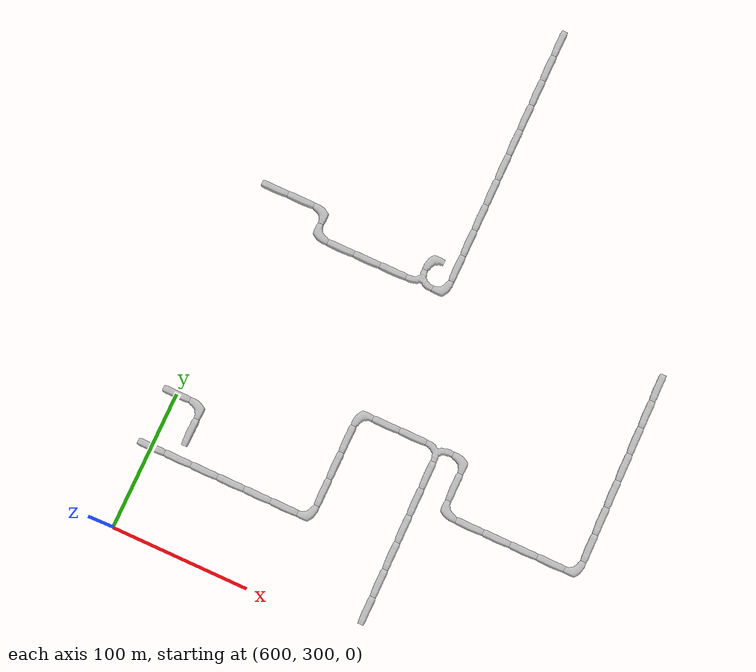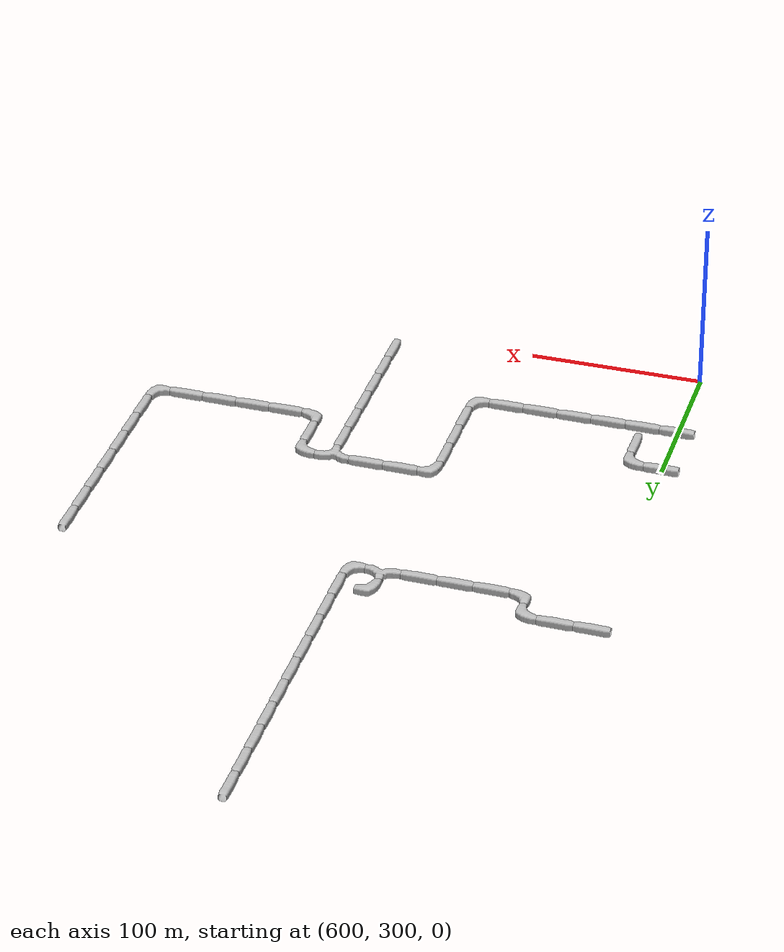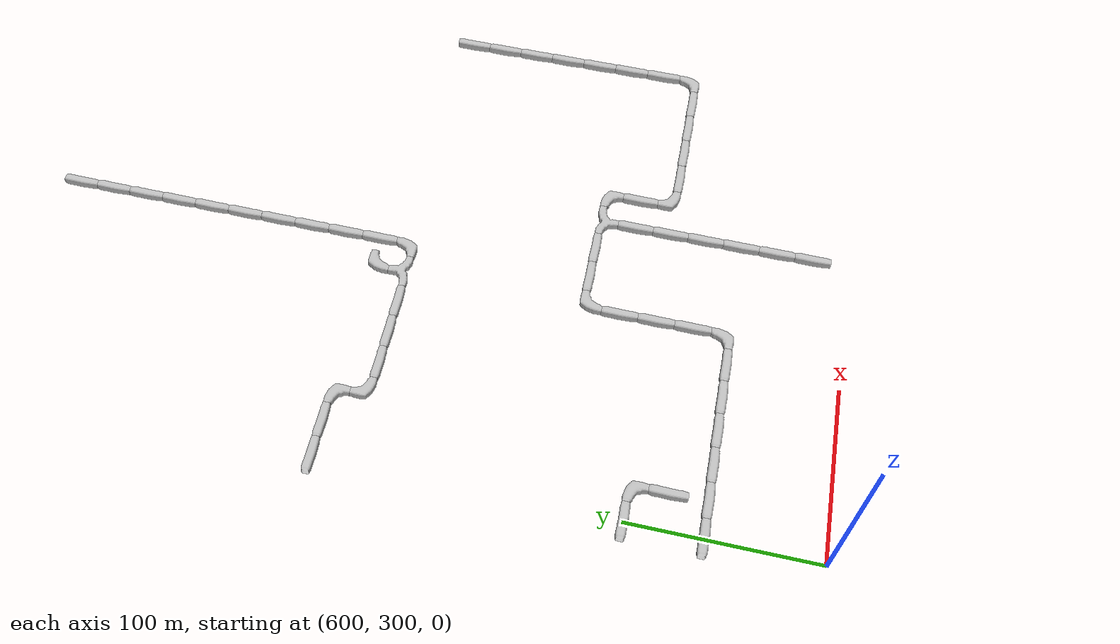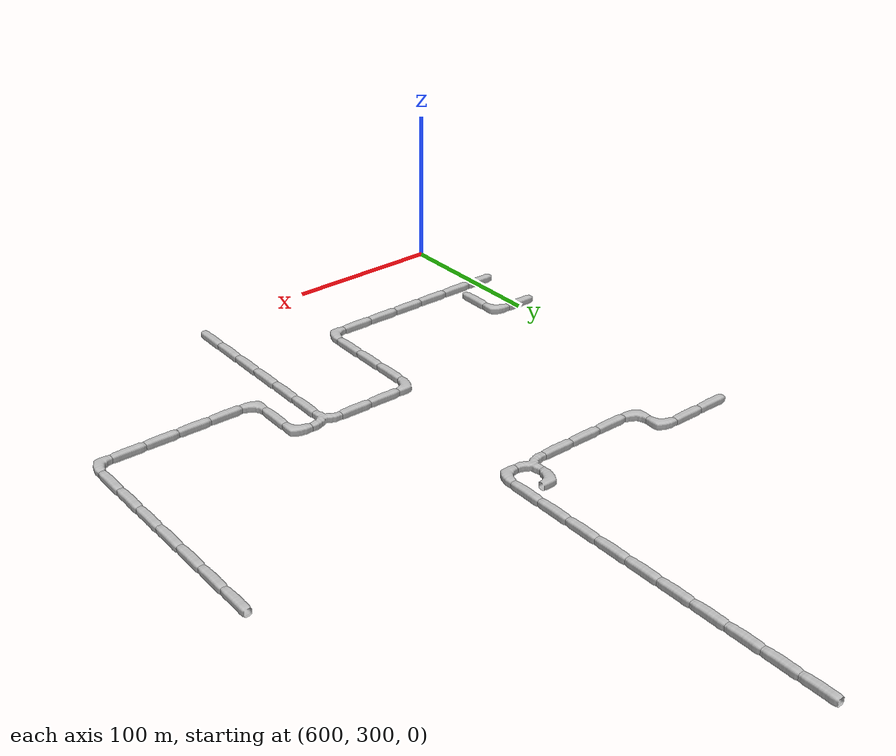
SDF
<sdf version="1.6">
 <world name="cave_32000">
  <include>
   <static>true</static>
   <name>cave_39_16</name>
   <pose>780 320 0 0 0 0.0</pose>
   <uri>model://cave_straight_20m</uri>
  </include>
  <include>
   <static>true</static>
   <name>cave_39_17</name>
   <pose>780 340 0 0 0 0.0</pose>
   <uri>model://cave_straight_20m</uri>
  </include>
  <include>
   <static>true</static>
   <name>cave_39_18</name>
   <pose>780 360 0 0 0 0.0</pose>
   <uri>model://cave_straight_20m</uri>
  </include>
  <include>
   <static>true</static>
   <name>cave_39_19</name>
   <pose>780 380 0 0 0 0.0</pose>
   <uri>model://cave_straight_20m</uri>
  </include>
  <include>
   <static>true</static>
   <name>cave_39_20</name>
   <pose>780 400 0 0 0 0.0</pose>
   <uri>model://cave_straight_20m</uri>
  </include>
  <include>
   <static>true</static>
   <name>cave_39_21</name>
   <pose>780 420 0 0 0 0.0</pose>
   <uri>model://cave_straight_20m</uri>
  </include>
  <include>
   <static>true</static>
   <name>cave_39_22</name>
   <pose>780 440 0 0 0 3.141592653589793</pose>
   <uri>model://cave_3way_20m</uri>
  </include>
  <include>
   <static>true</static>
   <name>cave_40_22</name>
   <pose>800 440 0 0 0 3.141592653589793</pose>
   <uri>model://cave_L_20m</uri>
  </include>
  <include>
   <static>true</static>
   <name>cave_40_21</name>
   <pose>800 420 0 0 0 0.0</pose>
   <uri>model://cave_straight_20m</uri>
  </include>
  <include>
   <static>true</static>
   <name>cave_40_20</name>
   <pose>800 400 0 0 0 0.0</pose>
   <uri>model://cave_L_20m</uri>
  </include>
  <include>
   <static>true</static>
   <name>cave_41_20</name>
   <pose>820 400 0 0 0 1.5707963267948966</pose>
   <uri>model://cave_straight_20m</uri>
  </include>
  <include>
   <static>true</static>
   <name>cave_42_20</name>
   <pose>840 400 0 0 0 1.5707963267948966</pose>
   <uri>model://cave_straight_20m</uri>
  </include>
  <include>
   <static>true</static>
   <name>cave_43_20</name>
   <pose>860 400 0 0 0 1.5707963267948966</pose>
   <uri>model://cave_straight_20m</uri>
  </include>
  <include>
   <static>true</static>
   <name>cave_44_20</name>
   <pose>880 400 0 0 0 1.5707963267948966</pose>
   <uri>model://cave_straight_20m</uri>
  </include>
  <include>
   <static>true</static>
   <name>cave_45_20</name>
   <pose>900 400 0 0 0 1.5707963267948966</pose>
   <uri>model://cave_L_20m</uri>
  </include>
  <include>
   <static>true</static>
   <name>cave_45_21</name>
   <pose>900 420 0 0 0 0.0</pose>
   <uri>model://cave_straight_20m</uri>
  </include>
  <include>
   <static>true</static>
   <name>cave_45_22</name>
   <pose>900 440 0 0 0 0.0</pose>
   <uri>model://cave_straight_20m</uri>
  </include>
  <include>
   <static>true</static>
   <name>cave_45_23</name>
   <pose>900 460 0 0 0 0.0</pose>
   <uri>model://cave_straight_20m</uri>
  </include>
  <include>
   <static>true</static>
   <name>cave_45_24</name>
   <pose>900 480 0 0 0 0.0</pose>
   <uri>model://cave_straight_20m</uri>
  </include>
  <include>
   <static>true</static>
   <name>cave_45_25</name>
   <pose>900 500 0 0 0 0.0</pose>
   <uri>model://cave_straight_20m</uri>
  </include>
  <include>
   <static>true</static>
   <name>cave_45_26</name>
   <pose>900 520 0 0 0 0.0</pose>
   <uri>model://cave_straight_20m</uri>
  </include>
  <include>
   <static>true</static>
   <name>cave_45_27</name>
   <pose>900 540 0 0 0 0.0</pose>
   <uri>model://cave_straight_20m</uri>
  </include>
  <include>
   <static>true</static>
   <name>cave_38_22</name>
   <pose>760 440 0 0 0 1.5707963267948966</pose>
   <uri>model://cave_straight_20m</uri>
  </include>
  <include>
   <static>true</static>
   <name>cave_37_22</name>
   <pose>740 440 0 0 0 1.5707963267948966</pose>
   <uri>model://cave_straight_20m</uri>
  </include>
  <include>
   <static>true</static>
   <name>cave_36_22</name>
   <pose>720 440 0 0 0 -1.5707963267948966</pose>
   <uri>model://cave_L_20m</uri>
  </include>
  <include>
   <static>true</static>
   <name>cave_36_21</name>
   <pose>720 420 0 0 0 0.0</pose>
   <uri>model://cave_straight_20m</uri>
  </include>
  <include>
   <static>true</static>
   <name>cave_36_20</name>
   <pose>720 400 0 0 0 0.0</pose>
   <uri>model://cave_straight_20m</uri>
  </include>
  <include>
   <static>true</static>
   <name>cave_36_19</name>
   <pose>720 380 0 0 0 0.0</pose>
   <uri>model://cave_straight_20m</uri>
  </include>
  <include>
   <static>true</static>
   <name>cave_36_18</name>
   <pose>720 360 0 0 0 1.5707963267948966</pose>
   <uri>model://cave_L_20m</uri>
  </include>
  <include>
   <static>true</static>
   <name>cave_35_18</name>
   <pose>700 360 0 0 0 1.5707963267948966</pose>
   <uri>model://cave_straight_20m</uri>
  </include>
  <include>
   <static>true</static>
   <name>cave_34_18</name>
   <pose>680 360 0 0 0 1.5707963267948966</pose>
   <uri>model://cave_straight_20m</uri>
  </include>
  <include>
   <static>true</static>
   <name>cave_33_18</name>
   <pose>660 360 0 0 0 1.5707963267948966</pose>
   <uri>model://cave_straight_20m</uri>
  </include>
  <include>
   <static>true</static>
   <name>cave_32_18</name>
   <pose>640 360 0 0 0 1.5707963267948966</pose>
   <uri>model://cave_straight_20m</uri>
  </include>
  <include>
   <static>true</static>
   <name>cave_31_18</name>
   <pose>620 360 0 0 0 1.5707963267948966</pose>
   <uri>model://cave_straight_20m</uri>
  </include>
  <include>
   <static>true</static>
   <name>cave_30_18</name>
   <pose>600 360 0 0 0 1.5707963267948966</pose>
   <uri>model://cave_straight_20m</uri>
  </include>
  <include>
   <static>true</static>
   <name>cave_30_28</name>
   <pose>600 560 0 0 0 1.5707963267948966</pose>
   <uri>model://cave_straight_20m</uri>
  </include>
  <include>
   <static>true</static>
   <name>cave_31_28</name>
   <pose>620 560 0 0 0 1.5707963267948966</pose>
   <uri>model://cave_straight_20m</uri>
  </include>
  <include>
   <static>true</static>
   <name>cave_32_28</name>
   <pose>640 560 0 0 0 3.141592653589793</pose>
   <uri>model://cave_L_20m</uri>
  </include>
  <include>
   <static>true</static>
   <name>cave_32_27</name>
   <pose>640 540 0 0 0 0.0</pose>
   <uri>model://cave_L_20m</uri>
  </include>
  <include>
   <static>true</static>
   <name>cave_33_27</name>
   <pose>660 540 0 0 0 1.5707963267948966</pose>
   <uri>model://cave_straight_20m</uri>
  </include>
  <include>
   <static>true</static>
   <name>cave_34_27</name>
   <pose>680 540 0 0 0 1.5707963267948966</pose>
   <uri>model://cave_straight_20m</uri>
  </include>
  <include>
   <static>true</static>
   <name>cave_35_27</name>
   <pose>700 540 0 0 0 1.5707963267948966</pose>
   <uri>model://cave_straight_20m</uri>
  </include>
  <include>
   <static>true</static>
   <name>cave_36_27</name>
   <pose>720 540 0 0 0 0.0</pose>
   <uri>model://cave_3way_20m</uri>
  </include>
  <include>
   <static>true</static>
   <name>cave_37_27</name>
   <pose>740 540 0 0 0 1.5707963267948966</pose>
   <uri>model://cave_L_20m</uri>
  </include>
  <include>
   <static>true</static>
   <name>cave_37_28</name>
   <pose>740 560 0 0 0 0.0</pose>
   <uri>model://cave_straight_20m</uri>
  </include>
  <include>
   <static>true</static>
   <name>cave_37_29</name>
   <pose>740 580 0 0 0 0.0</pose>
   <uri>model://cave_straight_20m</uri>
  </include>
  <include>
   <static>true</static>
   <name>cave_37_30</name>
   <pose>740 600 0 0 0 0.0</pose>
   <uri>model://cave_straight_20m</uri>
  </include>
  <include>
   <static>true</static>
   <name>cave_37_31</name>
   <pose>740 620 0 0 0 0.0</pose>
   <uri>model://cave_straight_20m</uri>
  </include>
  <include>
   <static>true</static>
   <name>cave_37_32</name>
   <pose>740 640 0 0 0 0.0</pose>
   <uri>model://cave_straight_20m</uri>
  </include>
  <include>
   <static>true</static>
   <name>cave_37_33</name>
   <pose>740 660 0 0 0 0.0</pose>
   <uri>model://cave_straight_20m</uri>
  </include>
  <include>
   <static>true</static>
   <name>cave_37_34</name>
   <pose>740 680 0 0 0 0.0</pose>
   <uri>model://cave_straight_20m</uri>
  </include>
  <include>
   <static>true</static>
   <name>cave_37_35</name>
   <pose>740 700 0 0 0 0.0</pose>
   <uri>model://cave_straight_20m</uri>
  </include>
  <include>
   <static>true</static>
   <name>cave_37_36</name>
   <pose>740 720 0 0 0 0.0</pose>
   <uri>model://cave_straight_20m</uri>
  </include>
  <include>
   <static>true</static>
   <name>cave_37_37</name>
   <pose>740 740 0 0 0 0.0</pose>
   <uri>model://cave_straight_20m</uri>
  </include>
  <include>
   <static>true</static>
   <name>cave_36_28</name>
   <pose>720 560 0 0 0 -1.5707963267948966</pose>
   <uri>model://cave_L_20m</uri>
  </include>
  <include>
   <static>true</static>
   <name>cave_30_20</name>
   <pose>600 400 0 0 0 1.5707963267948966</pose>
   <uri>model://cave_straight_20m</uri>
  </include>
  <include>
   <static>true</static>
   <name>cave_31_20</name>
   <pose>620 400 0 0 0 3.141592653589793</pose>
   <uri>model://cave_L_20m</uri>
  </include>
  <include>
   <static>true</static>
   <name>cave_31_19</name>
   <pose>620 380 0 0 0 0.0</pose>
   <uri>model://cave_straight_20m</uri>
  </include>
 </world>
</sdf>
